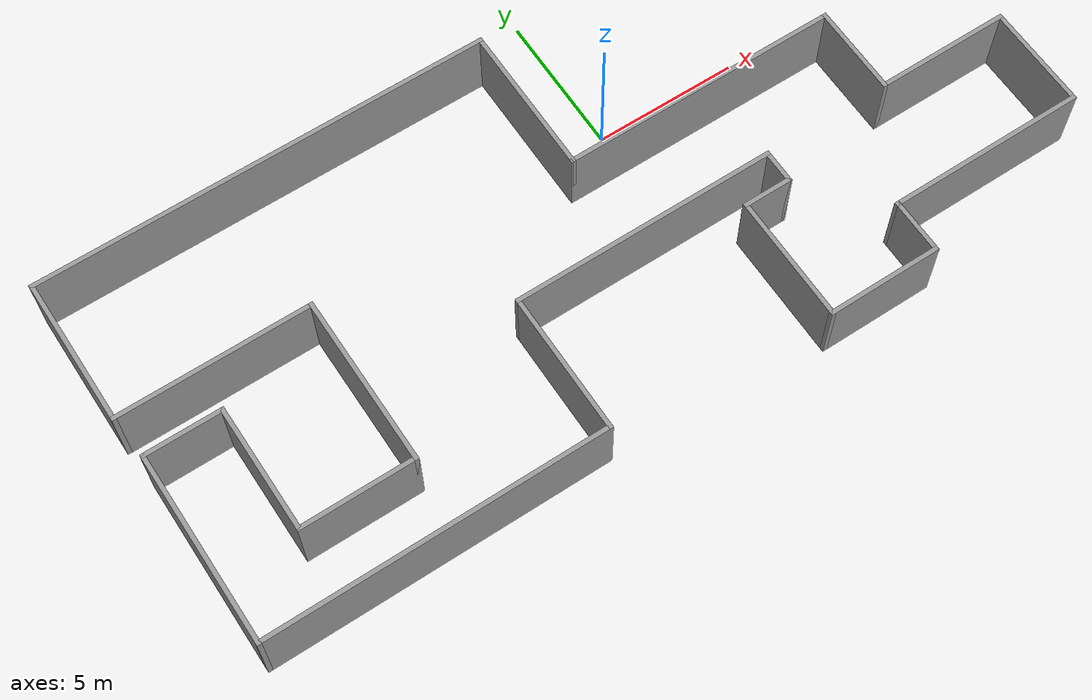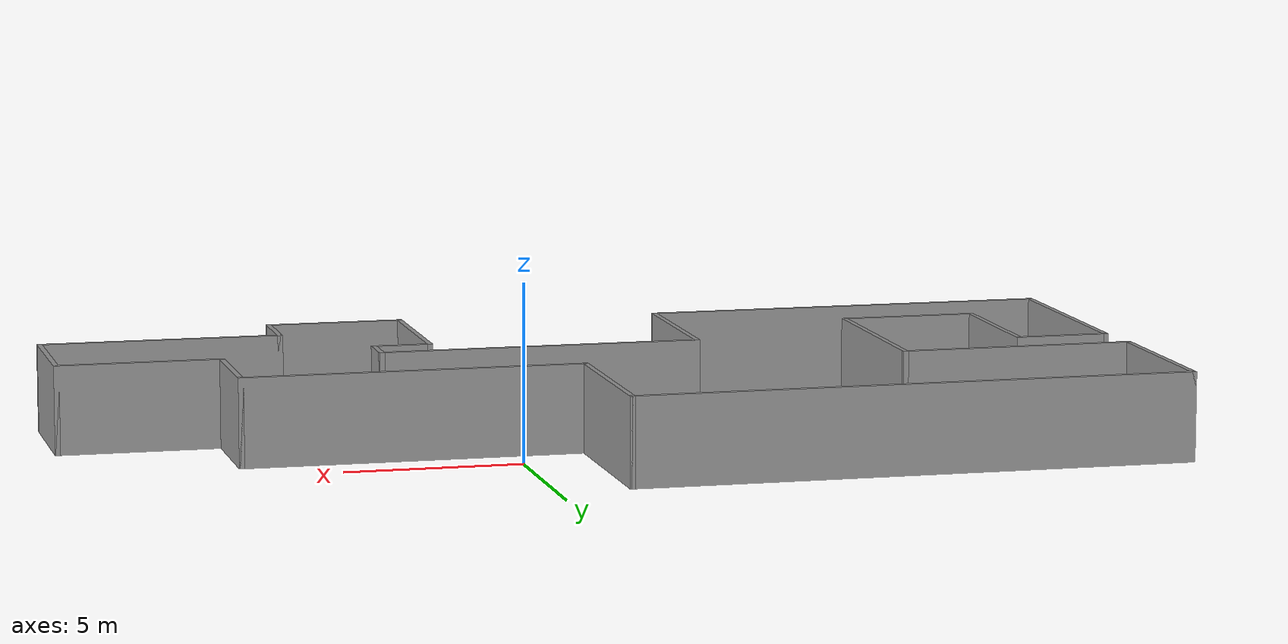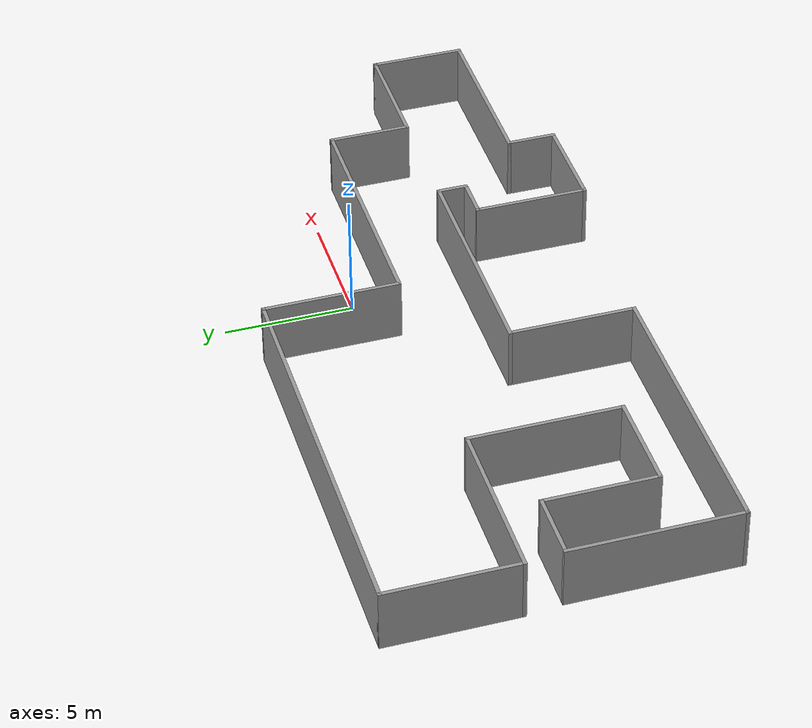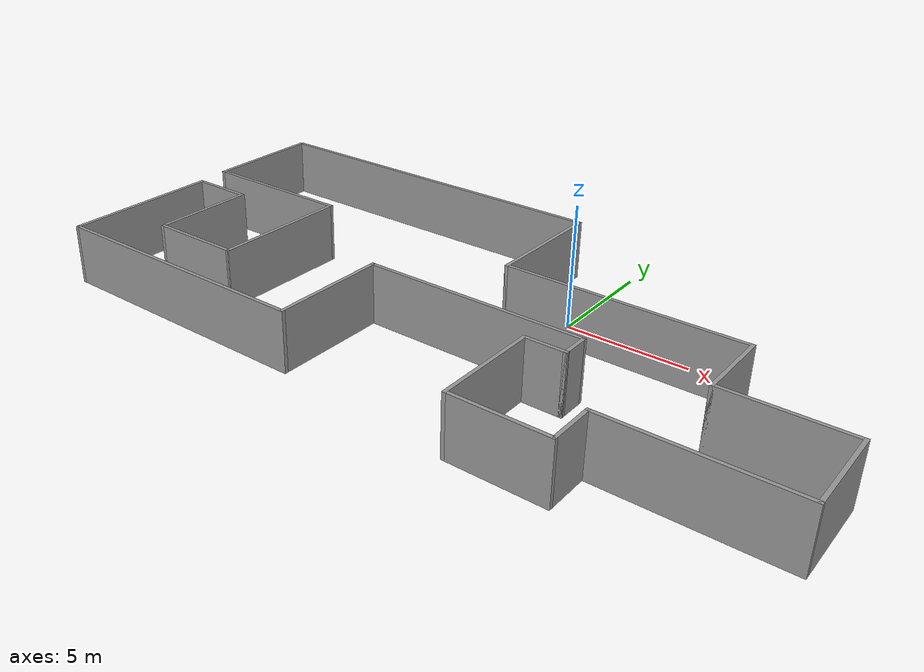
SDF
<?xml version='1.0'?>
<sdf version='1.7'>
  <model name='JackB_W1Fp'>
    <pose>-2.805 -2.97 0 0 -0 0</pose>
    <link name='Wall_0'>
      <collision name='Wall_0_Collision'>
        <geometry>
          <box>
            <size>9.75 0.15 2.5</size>
          </box>
        </geometry>
        <pose>0 0 1.25 0 -0 0</pose>
      </collision>
      <visual name='Wall_0_Visual'>
        <pose>0 0 1.25 0 -0 0</pose>
        <geometry>
          <box>
            <size>9.75 0.15 2.5</size>
          </box>
        </geometry>
        <material>
          <script>
            <uri>file://media/materials/scripts/gazebo.material</uri>
            <name>Gazebo/Grey</name>
          </script>
          <ambient>1 1 1 1</ambient>
        </material>
        <meta>
          <layer>0</layer>
        </meta>
      </visual>
      <pose>5.575 1.65 0 0 -0 0</pose>
    </link>
    <link name='Wall_1'>
      <collision name='Wall_1_Collision'>
        <geometry>
          <box>
            <size>3.25 0.15 2.5</size>
          </box>
        </geometry>
        <pose>0 0 1.25 0 -0 0</pose>
      </collision>
      <visual name='Wall_1_Visual'>
        <pose>0 0 1.25 0 -0 0</pose>
        <geometry>
          <box>
            <size>3.25 0.15 2.5</size>
          </box>
        </geometry>
        <material>
          <script>
            <uri>file://media/materials/scripts/gazebo.material</uri>
            <name>Gazebo/Grey</name>
          </script>
          <ambient>1 1 1 1</ambient>
        </material>
        <meta>
          <layer>0</layer>
        </meta>
      </visual>
      <pose>10.375 0.1 0 0 -0 -1.5708</pose>
    </link>
    <link name='Wall_10'>
      <collision name='Wall_10_Collision'>
        <geometry>
          <box>
            <size>2 0.15 2.5</size>
          </box>
        </geometry>
        <pose>0 0 1.25 0 -0 0</pose>
      </collision>
      <visual name='Wall_10_Visual'>
        <pose>0 0 1.25 0 -0 0</pose>
        <geometry>
          <box>
            <size>2 0.15 2.5</size>
          </box>
        </geometry>
        <material>
          <script>
            <uri>file://media/materials/scripts/gazebo.material</uri>
            <name>Gazebo/Grey</name>
          </script>
          <ambient>1 1 1 1</ambient>
        </material>
        <meta>
          <layer>0</layer>
        </meta>
      </visual>
      <pose>8.125 -5.975 0 0 -0 -1.5708</pose>
    </link>
    <link name='Wall_11'>
      <collision name='Wall_11_Collision'>
        <geometry>
          <box>
            <size>4 0.15 2.5</size>
          </box>
        </geometry>
        <pose>0 0 1.25 0 -0 0</pose>
      </collision>
      <visual name='Wall_11_Visual'>
        <pose>0 0 1.25 0 -0 0</pose>
        <geometry>
          <box>
            <size>4 0.15 2.5</size>
          </box>
        </geometry>
        <material>
          <script>
            <uri>file://media/materials/scripts/gazebo.material</uri>
            <name>Gazebo/Grey</name>
          </script>
          <ambient>1 1 1 1</ambient>
        </material>
        <meta>
          <layer>0</layer>
        </meta>
      </visual>
      <pose>6.2 -6.9 0 0 -0 3.14159</pose>
    </link>
    <link name='Wall_12'>
      <collision name='Wall_12_Collision'>
        <geometry>
          <box>
            <size>4.5 0.15 2.5</size>
          </box>
        </geometry>
        <pose>0 0 1.25 0 -0 0</pose>
      </collision>
      <visual name='Wall_12_Visual'>
        <pose>0 0 1.25 0 -0 0</pose>
        <geometry>
          <box>
            <size>4.5 0.15 2.5</size>
          </box>
        </geometry>
        <material>
          <script>
            <uri>file://media/materials/scripts/gazebo.material</uri>
            <name>Gazebo/Grey</name>
          </script>
          <ambient>1 1 1 1</ambient>
        </material>
        <meta>
          <layer>0</layer>
        </meta>
      </visual>
      <pose>4.275 -4.725 0 0 -0 1.5708</pose>
    </link>
    <link name='Wall_13'>
      <collision name='Wall_13_Collision'>
        <geometry>
          <box>
            <size>1.75 0.15 2.5</size>
          </box>
        </geometry>
        <pose>0 0 1.25 0 -0 0</pose>
      </collision>
      <visual name='Wall_13_Visual'>
        <pose>0 0 1.25 0 -0 0</pose>
        <geometry>
          <box>
            <size>1.75 0.15 2.5</size>
          </box>
        </geometry>
        <material>
          <script>
            <uri>file://media/materials/scripts/gazebo.material</uri>
            <name>Gazebo/Grey</name>
          </script>
          <ambient>1 1 1 1</ambient>
        </material>
        <meta>
          <layer>0</layer>
        </meta>
      </visual>
      <pose>5.075 -2.55 0 0 -0 0</pose>
    </link>
    <link name='Wall_14'>
      <collision name='Wall_14_Collision'>
        <geometry>
          <box>
            <size>1.25 0.15 2.5</size>
          </box>
        </geometry>
        <pose>0 0 1.25 0 -0 0</pose>
      </collision>
      <visual name='Wall_14_Visual'>
        <pose>0 0 1.25 0 -0 0</pose>
        <geometry>
          <box>
            <size>1.25 0.15 2.5</size>
          </box>
        </geometry>
        <material>
          <script>
            <uri>file://media/materials/scripts/gazebo.material</uri>
            <name>Gazebo/Grey</name>
          </script>
          <ambient>1 1 1 1</ambient>
        </material>
        <meta>
          <layer>0</layer>
        </meta>
      </visual>
      <pose>5.875 -2 0 0 -0 1.5708</pose>
    </link>
    <link name='Wall_15'>
      <collision name='Wall_15_Collision'>
        <geometry>
          <box>
            <size>9.25 0.15 2.5</size>
          </box>
        </geometry>
        <pose>0 0 1.25 0 -0 0</pose>
      </collision>
      <visual name='Wall_15_Visual'>
        <pose>0 0 1.25 0 -0 0</pose>
        <geometry>
          <box>
            <size>9.25 0.15 2.5</size>
          </box>
        </geometry>
        <material>
          <script>
            <uri>file://media/materials/scripts/gazebo.material</uri>
            <name>Gazebo/Grey</name>
          </script>
          <ambient>1 1 1 1</ambient>
        </material>
        <meta>
          <layer>0</layer>
        </meta>
      </visual>
      <pose>1.325 -1.45 0 0 -0 3.14159</pose>
    </link>
    <link name='Wall_16'>
      <collision name='Wall_16_Collision'>
        <geometry>
          <box>
            <size>5 0.15 2.5</size>
          </box>
        </geometry>
        <pose>0 0 1.25 0 -0 0</pose>
      </collision>
      <visual name='Wall_16_Visual'>
        <pose>0 0 1.25 0 -0 0</pose>
        <geometry>
          <box>
            <size>5 0.15 2.5</size>
          </box>
        </geometry>
        <material>
          <script>
            <uri>file://media/materials/scripts/gazebo.material</uri>
            <name>Gazebo/Grey</name>
          </script>
          <ambient>1 1 1 1</ambient>
        </material>
        <meta>
          <layer>0</layer>
        </meta>
      </visual>
      <pose>-3.225 -3.875 0 0 -0 -1.5708</pose>
    </link>
    <link name='Wall_17'>
      <collision name='Wall_17_Collision'>
        <geometry>
          <box>
            <size>11.75 0.15 2.5</size>
          </box>
        </geometry>
        <pose>0 0 1.25 0 -0 0</pose>
      </collision>
      <visual name='Wall_17_Visual'>
        <pose>0 0 1.25 0 -0 0</pose>
        <geometry>
          <box>
            <size>11.75 0.15 2.5</size>
          </box>
        </geometry>
        <material>
          <script>
            <uri>file://media/materials/scripts/gazebo.material</uri>
            <name>Gazebo/Grey</name>
          </script>
          <ambient>1 1 1 1</ambient>
        </material>
        <meta>
          <layer>0</layer>
        </meta>
      </visual>
      <pose>-9.025 -6.3 0 0 -0 3.14159</pose>
    </link>
    <link name='Wall_18'>
      <collision name='Wall_18_Collision'>
        <geometry>
          <box>
            <size>6.75 0.15 2.5</size>
          </box>
        </geometry>
        <pose>0 0 1.25 0 -0 0</pose>
      </collision>
      <visual name='Wall_18_Visual'>
        <pose>0 0 1.25 0 -0 0</pose>
        <geometry>
          <box>
            <size>6.75 0.15 2.5</size>
          </box>
        </geometry>
        <material>
          <script>
            <uri>file://media/materials/scripts/gazebo.material</uri>
            <name>Gazebo/Grey</name>
          </script>
          <ambient>1 1 1 1</ambient>
        </material>
        <meta>
          <layer>0</layer>
        </meta>
      </visual>
      <pose>-14.825 -3 0 0 -0 1.5708</pose>
    </link>
    <link name='Wall_19'>
      <collision name='Wall_19_Collision'>
        <geometry>
          <box>
            <size>2.75 0.15 2.5</size>
          </box>
        </geometry>
        <pose>0 0 1.25 0 -0 0</pose>
      </collision>
      <visual name='Wall_19_Visual'>
        <pose>0 0 1.25 0 -0 0</pose>
        <geometry>
          <box>
            <size>2.75 0.15 2.5</size>
          </box>
        </geometry>
        <material>
          <script>
            <uri>file://media/materials/scripts/gazebo.material</uri>
            <name>Gazebo/Grey</name>
          </script>
          <ambient>1 1 1 1</ambient>
        </material>
        <meta>
          <layer>0</layer>
        </meta>
      </visual>
      <pose>-13.525 0.3 0 0 -0 0</pose>
    </link>
    <link name='Wall_20'>
      <collision name='Wall_20_Collision'>
        <geometry>
          <box>
            <size>4.5 0.15 2.5</size>
          </box>
        </geometry>
        <pose>0 0 1.25 0 -0 0</pose>
      </collision>
      <visual name='Wall_20_Visual'>
        <pose>0 0 1.25 0 -0 0</pose>
        <geometry>
          <box>
            <size>4.5 0.15 2.5</size>
          </box>
        </geometry>
        <material>
          <script>
            <uri>file://media/materials/scripts/gazebo.material</uri>
            <name>Gazebo/Grey</name>
          </script>
          <ambient>1 1 1 1</ambient>
        </material>
        <meta>
          <layer>0</layer>
        </meta>
      </visual>
      <pose>-12.225 -1.875 0 0 -0 -1.5708</pose>
    </link>
    <link name='Wall_21'>
      <collision name='Wall_21_Collision'>
        <geometry>
          <box>
            <size>4 0.15 2.5</size>
          </box>
        </geometry>
        <pose>0 0 1.25 0 -0 0</pose>
      </collision>
      <visual name='Wall_21_Visual'>
        <pose>0 0 1.25 0 -0 0</pose>
        <geometry>
          <box>
            <size>4 0.15 2.5</size>
          </box>
        </geometry>
        <material>
          <script>
            <uri>file://media/materials/scripts/gazebo.material</uri>
            <name>Gazebo/Grey</name>
          </script>
          <ambient>1 1 1 1</ambient>
        </material>
        <meta>
          <layer>0</layer>
        </meta>
      </visual>
      <pose>-10.3 -4.05 0 0 -0 0</pose>
    </link>
    <link name='Wall_22'>
      <collision name='Wall_22_Collision'>
        <geometry>
          <box>
            <size>6 0.15 2.5</size>
          </box>
        </geometry>
        <pose>0 0 1.25 0 -0 0</pose>
      </collision>
      <visual name='Wall_22_Visual'>
        <pose>0 0 1.25 0 -0 0</pose>
        <geometry>
          <box>
            <size>6 0.15 2.5</size>
          </box>
        </geometry>
        <material>
          <script>
            <uri>file://media/materials/scripts/gazebo.material</uri>
            <name>Gazebo/Grey</name>
          </script>
          <ambient>1 1 1 1</ambient>
        </material>
        <meta>
          <layer>0</layer>
        </meta>
      </visual>
      <pose>-8.375 -1.125 0 0 -0 1.5708</pose>
    </link>
    <link name='Wall_23'>
      <collision name='Wall_23_Collision'>
        <geometry>
          <box>
            <size>6.75 0.15 2.5</size>
          </box>
        </geometry>
        <pose>0 0 1.25 0 -0 0</pose>
      </collision>
      <visual name='Wall_23_Visual'>
        <pose>0 0 1.25 0 -0 0</pose>
        <geometry>
          <box>
            <size>6.75 0.15 2.5</size>
          </box>
        </geometry>
        <material>
          <script>
            <uri>file://media/materials/scripts/gazebo.material</uri>
            <name>Gazebo/Grey</name>
          </script>
          <ambient>1 1 1 1</ambient>
        </material>
        <meta>
          <layer>0</layer>
        </meta>
      </visual>
      <pose>-11.675 1.8 0 0 -0 3.14159</pose>
    </link>
    <link name='Wall_3'>
      <collision name='Wall_3_Collision'>
        <geometry>
          <box>
            <size>4.75 0.15 2.5</size>
          </box>
        </geometry>
        <pose>0 0 1.25 0 -0 0</pose>
      </collision>
      <visual name='Wall_3_Visual'>
        <pose>0 0 1.25 0 -0 0</pose>
        <geometry>
          <box>
            <size>4.75 0.15 2.5</size>
          </box>
        </geometry>
        <material>
          <script>
            <uri>file://media/materials/scripts/gazebo.material</uri>
            <name>Gazebo/Grey</name>
          </script>
          <ambient>1 1 1 1</ambient>
        </material>
        <meta>
          <layer>0</layer>
        </meta>
      </visual>
      <pose>12.675 -1.45 0 0 -0 0</pose>
    </link>
    <link name='Wall_35'>
      <collision name='Wall_35_Collision'>
        <geometry>
          <box>
            <size>5.25 0.15 2.5</size>
          </box>
        </geometry>
        <pose>0 0 1.25 0 -0 0</pose>
      </collision>
      <visual name='Wall_35_Visual'>
        <pose>0 0 1.25 0 -0 0</pose>
        <geometry>
          <box>
            <size>5.25 0.15 2.5</size>
          </box>
        </geometry>
        <material>
          <script>
            <uri>file://media/materials/scripts/gazebo.material</uri>
            <name>Gazebo/Grey</name>
          </script>
          <ambient>1 1 1 1</ambient>
        </material>
        <meta>
          <layer>0</layer>
        </meta>
      </visual>
      <pose>-14.975 4.35 0 0 -0 1.5708</pose>
    </link>
    <link name='Wall_37'>
      <collision name='Wall_37_Collision'>
        <geometry>
          <box>
            <size>15.9 0.15 2.5</size>
          </box>
        </geometry>
        <pose>0 0 1.25 0 -0 0</pose>
      </collision>
      <visual name='Wall_37_Visual'>
        <pose>0 0 1.25 0 -0 0</pose>
        <geometry>
          <box>
            <size>15.9 0.15 2.5</size>
          </box>
        </geometry>
        <material>
          <script>
            <uri>file://media/materials/scripts/gazebo.material</uri>
            <name>Gazebo/Grey</name>
          </script>
          <ambient>1 1 1 1</ambient>
        </material>
        <meta>
          <layer>0</layer>
        </meta>
      </visual>
      <pose>-7.1 6.9 0 0 -0 0</pose>
    </link>
    <link name='Wall_38'>
      <collision name='Wall_38_Collision'>
        <geometry>
          <box>
            <size>5.4 0.15 2.5</size>
          </box>
        </geometry>
        <pose>0 0 1.25 0 -0 0</pose>
      </collision>
      <visual name='Wall_38_Visual'>
        <pose>0 0 1.25 0 -0 0</pose>
        <geometry>
          <box>
            <size>5.4 0.15 2.5</size>
          </box>
        </geometry>
        <material>
          <script>
            <uri>file://media/materials/scripts/gazebo.material</uri>
            <name>Gazebo/Grey</name>
          </script>
          <ambient>1 1 1 1</ambient>
        </material>
        <meta>
          <layer>0</layer>
        </meta>
      </visual>
      <pose>0.775001 4.275 0 0 -0 -1.5708</pose>
    </link>
    <link name='Wall_4'>
      <collision name='Wall_4_Collision'>
        <geometry>
          <box>
            <size>3.75 0.15 2.5</size>
          </box>
        </geometry>
        <pose>0 0 1.25 0 -0 0</pose>
      </collision>
      <visual name='Wall_4_Visual'>
        <pose>0 0 1.25 0 -0 0</pose>
        <geometry>
          <box>
            <size>3.75 0.15 2.5</size>
          </box>
        </geometry>
        <material>
          <script>
            <uri>file://media/materials/scripts/gazebo.material</uri>
            <name>Gazebo/Grey</name>
          </script>
          <ambient>1 1 1 1</ambient>
        </material>
        <meta>
          <layer>0</layer>
        </meta>
      </visual>
      <pose>14.975 -3.25 0 0 -0 -1.5708</pose>
    </link>
    <link name='Wall_9'>
      <collision name='Wall_9_Collision'>
        <geometry>
          <box>
            <size>7 0.15 2.5</size>
          </box>
        </geometry>
        <pose>0 0 1.25 0 -0 0</pose>
      </collision>
      <visual name='Wall_9_Visual'>
        <pose>0 0 1.25 0 -0 0</pose>
        <geometry>
          <box>
            <size>7 0.15 2.5</size>
          </box>
        </geometry>
        <material>
          <script>
            <uri>file://media/materials/scripts/gazebo.material</uri>
            <name>Gazebo/Grey</name>
          </script>
          <ambient>1 1 1 1</ambient>
        </material>
        <meta>
          <layer>0</layer>
        </meta>
      </visual>
      <pose>11.55 -5.05 0 0 -0 3.14159</pose>
    </link>
    <static>1</static>
  </model>
</sdf>
